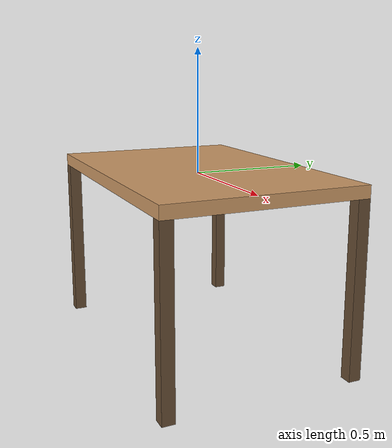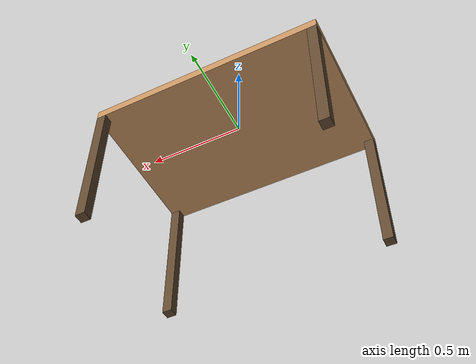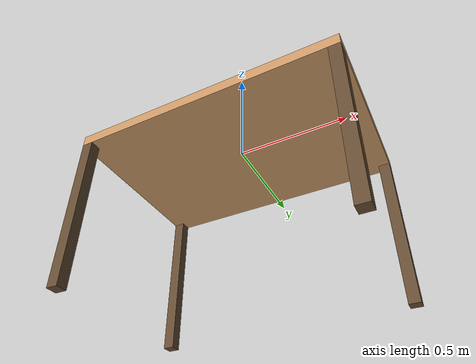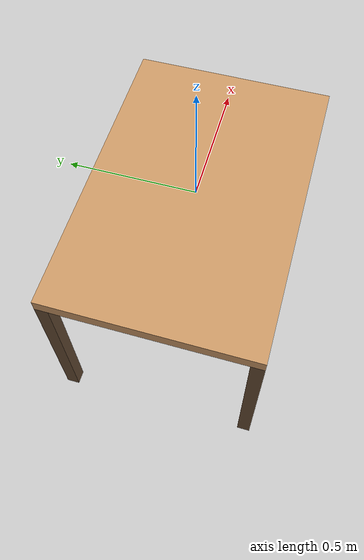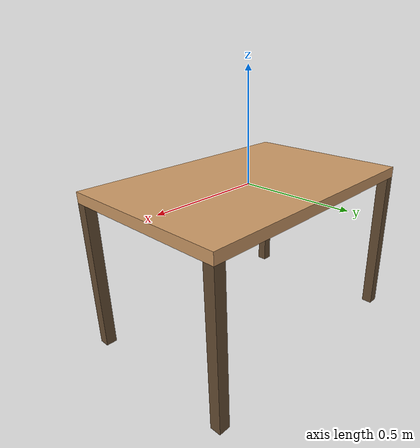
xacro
<?xml version="1.0"?>
<robot xmlns:xacro="http://www.ros.org/wiki/xacro" name="chess_table">

  <!-- Table properties -->
  <xacro:property name="table_length" value="1.2"/>
  <xacro:property name="table_width" value="0.8"/>
  <xacro:property name="table_height" value="0.75"/>
  <xacro:property name="table_thickness" value="0.05"/>
  <xacro:property name="leg_width" value="0.05"/>
  <xacro:property name="leg_height" value="${table_height - table_thickness}"/>

  <!-- Materials -->
  <material name="table_wood">
    <color rgba="0.8 0.6 0.4 1.0"/>
  </material>

  <material name="table_legs">
    <color rgba="0.4 0.3 0.2 1.0"/>
  </material>

  <!-- Table top -->
  <link name="table_top">
    <inertial>
      <origin xyz="0 0 0" rpy="0 0 0"/>
      <mass value="20.0"/>
      <inertia ixx="1.33" ixy="0" ixz="0" iyy="2.4" iyz="0" izz="3.73"/>
    </inertial>
    <visual>
      <origin xyz="0 0 0" rpy="0 0 0"/>
      <geometry>
        <box size="${table_length} ${table_width} ${table_thickness}"/>
      </geometry>
      <material name="table_wood"/>
    </visual>
    <collision>
      <origin xyz="0 0 0" rpy="0 0 0"/>
      <geometry>
        <box size="${table_length} ${table_width} ${table_thickness}"/>
      </geometry>
    </collision>
  </link>

  <!-- Table legs -->
  <xacro:macro name="table_leg" params="name x y">
    <link name="table_leg_${name}">
      <inertial>
        <origin xyz="0 0 0" rpy="0 0 0"/>
        <mass value="2.0"/>
        <inertia ixx="0.02" ixy="0" ixz="0" iyy="0.02" iyz="0" izz="0.001"/>
      </inertial>
      <visual>
        <origin xyz="0 0 0" rpy="0 0 0"/>
        <geometry>
          <box size="${leg_width} ${leg_width} ${leg_height}"/>
        </geometry>
        <material name="table_legs"/>
      </visual>
      <collision>
        <origin xyz="0 0 0" rpy="0 0 0"/>
        <geometry>
          <box size="${leg_width} ${leg_width} ${leg_height}"/>
        </geometry>
      </collision>
    </link>

    <joint name="table_top_to_leg_${name}" type="fixed">
      <parent link="table_top"/>
      <child link="table_leg_${name}"/>
      <origin xyz="${x} ${y} ${-table_thickness/2 - leg_height/2}" rpy="0 0 0"/>
    </joint>
  </xacro:macro>

  <!-- Create all four legs -->
  <xacro:table_leg name="fl" x="${table_length/2 - leg_width/2}" y="${table_width/2 - leg_width/2}"/>
  <xacro:table_leg name="fr" x="${table_length/2 - leg_width/2}" y="${-table_width/2 + leg_width/2}"/>
  <xacro:table_leg name="bl" x="${-table_length/2 + leg_width/2}" y="${table_width/2 - leg_width/2}"/>
  <xacro:table_leg name="br" x="${-table_length/2 + leg_width/2}" y="${-table_width/2 + leg_width/2}"/>

  <!-- Gazebo properties -->
  <gazebo reference="table_top">
    <material>Gazebo/Wood</material>
    <mu1>0.6</mu1>
    <mu2>0.6</mu2>
    <kp>1000000.0</kp>
    <kd>100.0</kd>
  </gazebo>

  <gazebo reference="table_leg_fl">
    <material>Gazebo/Wood</material>
  </gazebo>
  <gazebo reference="table_leg_fr">
    <material>Gazebo/Wood</material>
  </gazebo>
  <gazebo reference="table_leg_bl">
    <material>Gazebo/Wood</material>
  </gazebo>
  <gazebo reference="table_leg_br">
    <material>Gazebo/Wood</material>
  </gazebo>

</robot>
